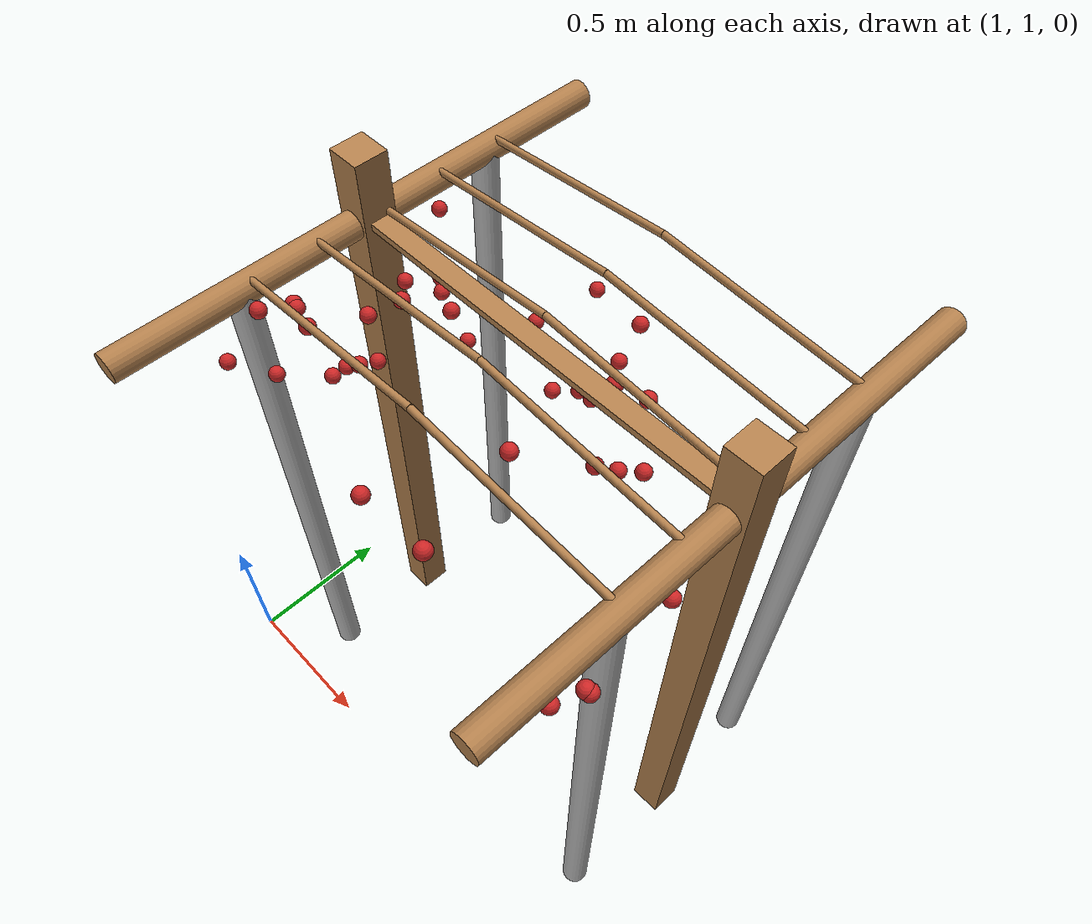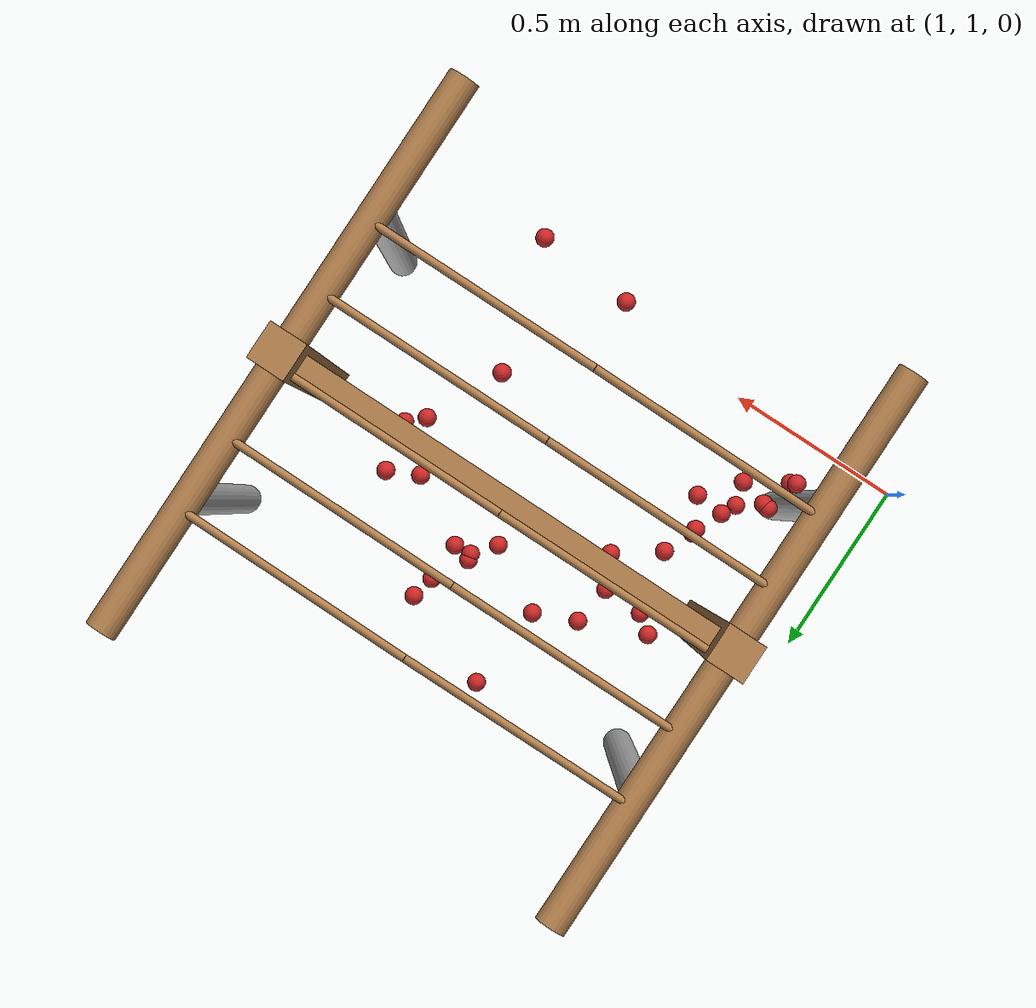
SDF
<sdf version="1.4">
 <model name="pergola">
  <include><name>post_9</name><pose>1.25 1.6 0 0 0 0</pose><uri>model://post</uri></include>
  <include><name>post_16</name><pose>2.5 1.6 0 0 0 0</pose><uri>model://post</uri></include>
  <link name="beam_9">
   <pose>1.875 1.6 1.81 0 0 0</pose>
   <collision name="collision"><geometry><box><size>1.25 0.06 0.02</size></box></geometry></collision>
   <visual name="visual">
    <geometry><box><size>1.25 0.06 0.02</size></box></geometry>
    <material><script><name>Gazebo/Wood</name></script></material>
   </visual>
   <inertial>
    <mass>5</mass>
    <inertia>
     <ixx>0.0016666666666666668</ixx>
     <ixy>0.0</ixy>
     <ixz>0.0</ixz>
     <iyy>0.6525416666666667</iyy>
     <iyz>0.0</iyz>
     <izz>0.6512083333333333</izz>
    </inertia>
   </inertial>
  </link>
  <include>
   <name>tree_7</name>
   <pose>1.25 1.2000000000000002 0 0 0 0</pose>
   <uri>model://tree_trunk</uri>
  </include>
  <include><name>tree_8</name><pose>1.25 2.0 0 0 0 0</pose><uri>model://tree_trunk</uri></include>
  <include>
   <name>tree_13</name>
   <pose>2.5 1.2000000000000002 0 0 0 0</pose>
   <uri>model://tree_trunk</uri>
  </include>
  <include><name>tree_14</name><pose>2.5 2.0 0 0 0 0</pose><uri>model://tree_trunk</uri></include>
  <link name="baseBranch_7">
   <pose>1.25 1.2000000000000002 1.8 1.5707963267948966 0 0</pose>
   <collision name="collision">
    <geometry><cylinder><radius>0.04</radius><length>0.74</length></cylinder></geometry>
   </collision>
   <visual name="visual">
    <geometry><cylinder><radius>0.04</radius><length>0.74</length></cylinder></geometry>
    <material><script><name>Gazebo/WoodFloor</name></script></material>
   </visual>
   <inertial>
    <mass>10</mass>
    <inertia>
     <ixx>0.4603333333333333</ixx>
     <ixy>0.0</ixy>
     <ixz>0.0</ixz>
     <iyy>0.4603333333333333</iyy>
     <iyz>0.0</iyz>
     <izz>0.008</izz>
    </inertia>
   </inertial>
  </link>
  <link name="baseBranch_8">
   <pose>1.25 2.0 1.8 1.5707963267948966 0 0</pose>
   <collision name="collision">
    <geometry><cylinder><radius>0.04</radius><length>0.74</length></cylinder></geometry>
   </collision>
   <visual name="visual">
    <geometry><cylinder><radius>0.04</radius><length>0.74</length></cylinder></geometry>
    <material><script><name>Gazebo/WoodFloor</name></script></material>
   </visual>
   <inertial>
    <mass>10</mass>
    <inertia>
     <ixx>0.4603333333333333</ixx>
     <ixy>0.0</ixy>
     <ixz>0.0</ixz>
     <iyy>0.4603333333333333</iyy>
     <iyz>0.0</iyz>
     <izz>0.008</izz>
    </inertia>
   </inertial>
  </link>
  <link name="baseBranch_13">
   <pose>2.5 1.2000000000000002 1.8 1.5707963267948966 0 0</pose>
   <collision name="collision">
    <geometry><cylinder><radius>0.04</radius><length>0.74</length></cylinder></geometry>
   </collision>
   <visual name="visual">
    <geometry><cylinder><radius>0.04</radius><length>0.74</length></cylinder></geometry>
    <material><script><name>Gazebo/WoodFloor</name></script></material>
   </visual>
   <inertial>
    <mass>10</mass>
    <inertia>
     <ixx>0.4603333333333333</ixx>
     <ixy>0.0</ixy>
     <ixz>0.0</ixz>
     <iyy>0.4603333333333333</iyy>
     <iyz>0.0</iyz>
     <izz>0.008</izz>
    </inertia>
   </inertial>
  </link>
  <link name="baseBranch_14">
   <pose>2.5 2.0 1.8 1.5707963267948966 0 0</pose>
   <collision name="collision">
    <geometry><cylinder><radius>0.04</radius><length>0.74</length></cylinder></geometry>
   </collision>
   <visual name="visual">
    <geometry><cylinder><radius>0.04</radius><length>0.74</length></cylinder></geometry>
    <material><script><name>Gazebo/WoodFloor</name></script></material>
   </visual>
   <inertial>
    <mass>10</mass>
    <inertia>
     <ixx>0.4603333333333333</ixx>
     <ixy>0.0</ixy>
     <ixz>0.0</ixz>
     <iyy>0.4603333333333333</iyy>
     <iyz>0.0</iyz>
     <izz>0.008</izz>
    </inertia>
   </inertial>
  </link>
  <link name="vine_60">
   <pose>1.5625 1.2300000000000002 1.85 0 1.4909663410826592 0</pose>
   <collision name="collision">
    <geometry><cylinder><radius>0.01</radius><length>0.6269968101992226</length></cylinder></geometry>
   </collision>
   <visual name="visual">
    <geometry><cylinder><radius>0.01</radius><length>0.6269968101992226</length></cylinder></geometry>
    <material><script><name>Gazebo/WoodFloor</name></script></material>
   </visual>
   <inertial>
    <mass>5</mass>
    <inertia>
     <ixx>0.1639270833333333</ixx>
     <ixy>0.0</ixy>
     <ixz>0.0</ixz>
     <iyy>0.1639270833333333</iyy>
     <iyz>0.0</iyz>
     <izz>0.00025</izz>
    </inertia>
   </inertial>
  </link>
  <link name="vine_61">
   <pose>2.1875 1.2300000000000002 1.85 0 -1.4909663410826592 0</pose>
   <collision name="collision">
    <geometry><cylinder><radius>0.01</radius><length>0.6269968101992226</length></cylinder></geometry>
   </collision>
   <visual name="visual">
    <geometry><cylinder><radius>0.01</radius><length>0.6269968101992226</length></cylinder></geometry>
    <material><script><name>Gazebo/WoodFloor</name></script></material>
   </visual>
   <inertial>
    <mass>5</mass>
    <inertia>
     <ixx>0.1639270833333333</ixx>
     <ixy>0.0</ixy>
     <ixz>0.0</ixz>
     <iyy>0.1639270833333333</iyy>
     <iyz>0.0</iyz>
     <izz>0.00025</izz>
    </inertia>
   </inertial>
  </link>
  <link name="vine_62">
   <pose>1.5625 1.4300000000000002 1.85 0 1.4909663410826592 0</pose>
   <collision name="collision">
    <geometry><cylinder><radius>0.01</radius><length>0.6269968101992226</length></cylinder></geometry>
   </collision>
   <visual name="visual">
    <geometry><cylinder><radius>0.01</radius><length>0.6269968101992226</length></cylinder></geometry>
    <material><script><name>Gazebo/WoodFloor</name></script></material>
   </visual>
   <inertial>
    <mass>5</mass>
    <inertia>
     <ixx>0.1639270833333333</ixx>
     <ixy>0.0</ixy>
     <ixz>0.0</ixz>
     <iyy>0.1639270833333333</iyy>
     <iyz>0.0</iyz>
     <izz>0.00025</izz>
    </inertia>
   </inertial>
  </link>
  <link name="vine_63">
   <pose>2.1875 1.4300000000000002 1.85 0 -1.4909663410826592 0</pose>
   <collision name="collision">
    <geometry><cylinder><radius>0.01</radius><length>0.6269968101992226</length></cylinder></geometry>
   </collision>
   <visual name="visual">
    <geometry><cylinder><radius>0.01</radius><length>0.6269968101992226</length></cylinder></geometry>
    <material><script><name>Gazebo/WoodFloor</name></script></material>
   </visual>
   <inertial>
    <mass>5</mass>
    <inertia>
     <ixx>0.1639270833333333</ixx>
     <ixy>0.0</ixy>
     <ixz>0.0</ixz>
     <iyy>0.1639270833333333</iyy>
     <iyz>0.0</iyz>
     <izz>0.00025</izz>
    </inertia>
   </inertial>
  </link>
  <link name="vine_64">
   <pose>1.5625 1.6300000000000001 1.85 0 1.4909663410826592 0</pose>
   <collision name="collision">
    <geometry><cylinder><radius>0.01</radius><length>0.6269968101992226</length></cylinder></geometry>
   </collision>
   <visual name="visual">
    <geometry><cylinder><radius>0.01</radius><length>0.6269968101992226</length></cylinder></geometry>
    <material><script><name>Gazebo/WoodFloor</name></script></material>
   </visual>
   <inertial>
    <mass>5</mass>
    <inertia>
     <ixx>0.1639270833333333</ixx>
     <ixy>0.0</ixy>
     <ixz>0.0</ixz>
     <iyy>0.1639270833333333</iyy>
     <iyz>0.0</iyz>
     <izz>0.00025</izz>
    </inertia>
   </inertial>
  </link>
  <link name="vine_65">
   <pose>2.1875 1.6300000000000001 1.85 0 -1.4909663410826592 0</pose>
   <collision name="collision">
    <geometry><cylinder><radius>0.01</radius><length>0.6269968101992226</length></cylinder></geometry>
   </collision>
   <visual name="visual">
    <geometry><cylinder><radius>0.01</radius><length>0.6269968101992226</length></cylinder></geometry>
    <material><script><name>Gazebo/WoodFloor</name></script></material>
   </visual>
   <inertial>
    <mass>5</mass>
    <inertia>
     <ixx>0.1639270833333333</ixx>
     <ixy>0.0</ixy>
     <ixz>0.0</ixz>
     <iyy>0.1639270833333333</iyy>
     <iyz>0.0</iyz>
     <izz>0.00025</izz>
    </inertia>
   </inertial>
  </link>
  <link name="vine_66">
   <pose>1.5625 1.83 1.85 0 1.4909663410826592 0</pose>
   <collision name="collision">
    <geometry><cylinder><radius>0.01</radius><length>0.6269968101992226</length></cylinder></geometry>
   </collision>
   <visual name="visual">
    <geometry><cylinder><radius>0.01</radius><length>0.6269968101992226</length></cylinder></geometry>
    <material><script><name>Gazebo/WoodFloor</name></script></material>
   </visual>
   <inertial>
    <mass>5</mass>
    <inertia>
     <ixx>0.1639270833333333</ixx>
     <ixy>0.0</ixy>
     <ixz>0.0</ixz>
     <iyy>0.1639270833333333</iyy>
     <iyz>0.0</iyz>
     <izz>0.00025</izz>
    </inertia>
   </inertial>
  </link>
  <link name="vine_67">
   <pose>2.1875 1.83 1.85 0 -1.4909663410826592 0</pose>
   <collision name="collision">
    <geometry><cylinder><radius>0.01</radius><length>0.6269968101992226</length></cylinder></geometry>
   </collision>
   <visual name="visual">
    <geometry><cylinder><radius>0.01</radius><length>0.6269968101992226</length></cylinder></geometry>
    <material><script><name>Gazebo/WoodFloor</name></script></material>
   </visual>
   <inertial>
    <mass>5</mass>
    <inertia>
     <ixx>0.1639270833333333</ixx>
     <ixy>0.0</ixy>
     <ixz>0.0</ixz>
     <iyy>0.1639270833333333</iyy>
     <iyz>0.0</iyz>
     <izz>0.00025</izz>
    </inertia>
   </inertial>
  </link>
  <link name="vine_68">
   <pose>1.5625 2.03 1.85 0 1.4909663410826592 0</pose>
   <collision name="collision">
    <geometry><cylinder><radius>0.01</radius><length>0.6269968101992226</length></cylinder></geometry>
   </collision>
   <visual name="visual">
    <geometry><cylinder><radius>0.01</radius><length>0.6269968101992226</length></cylinder></geometry>
    <material><script><name>Gazebo/WoodFloor</name></script></material>
   </visual>
   <inertial>
    <mass>5</mass>
    <inertia>
     <ixx>0.1639270833333333</ixx>
     <ixy>0.0</ixy>
     <ixz>0.0</ixz>
     <iyy>0.1639270833333333</iyy>
     <iyz>0.0</iyz>
     <izz>0.00025</izz>
    </inertia>
   </inertial>
  </link>
  <link name="vine_69">
   <pose>2.1875 2.03 1.85 0 -1.4909663410826592 0</pose>
   <collision name="collision">
    <geometry><cylinder><radius>0.01</radius><length>0.6269968101992226</length></cylinder></geometry>
   </collision>
   <visual name="visual">
    <geometry><cylinder><radius>0.01</radius><length>0.6269968101992226</length></cylinder></geometry>
    <material><script><name>Gazebo/WoodFloor</name></script></material>
   </visual>
   <inertial>
    <mass>5</mass>
    <inertia>
     <ixx>0.1639270833333333</ixx>
     <ixy>0.0</ixy>
     <ixz>0.0</ixz>
     <iyy>0.1639270833333333</iyy>
     <iyz>0.0</iyz>
     <izz>0.00025</izz>
    </inertia>
   </inertial>
  </link>
  <link name="fruit_4">
   <pose>2.4974649581701107 1.416926298565471 1.6243544361853863 0 0 0</pose>
   <collision name="fruit_collision_4"><geometry><sphere><radius>0.022</radius></sphere></geometry></collision>
   <visual name="visual">
    <geometry><sphere><radius>0.022</radius></sphere></geometry>
    <material><script><name>Gazebo/Red</name></script></material>
   </visual>
   <inertial>
    <mass>0.05</mass>
    <inertia>
     <ixx>9.679999999999999e-06</ixx>
     <ixy>0.0</ixy>
     <ixz>0.0</ixz>
     <iyy>9.679999999999999e-06</iyy>
     <iyz>0.0</iyz>
     <izz>9.679999999999999e-06</izz>
    </inertia>
   </inertial>
   <sensor name="fruit_contact_4" type="contact">
    <plugin name="contact_plugin_4" filename="libcontact_plugin.so"/>
    <contact><collision>fruit_collision_4</collision><topic>fruit_contact_topic_4</topic></contact>
   </sensor>
  </link>
  <link name="fruit_7">
   <pose>1.4714674962788106 1.4104890919146766 1.7336899253082798 0 0 0</pose>
   <collision name="fruit_collision_7"><geometry><sphere><radius>0.022</radius></sphere></geometry></collision>
   <visual name="visual">
    <geometry><sphere><radius>0.022</radius></sphere></geometry>
    <material><script><name>Gazebo/Red</name></script></material>
   </visual>
   <inertial>
    <mass>0.05</mass>
    <inertia>
     <ixx>9.679999999999999e-06</ixx>
     <ixy>0.0</ixy>
     <ixz>0.0</ixz>
     <iyy>9.679999999999999e-06</iyy>
     <iyz>0.0</iyz>
     <izz>9.679999999999999e-06</izz>
    </inertia>
   </inertial>
   <sensor name="fruit_contact_7" type="contact">
    <plugin name="contact_plugin_7" filename="libcontact_plugin.so"/>
    <contact><collision>fruit_collision_7</collision><topic>fruit_contact_topic_7</topic></contact>
   </sensor>
  </link>
  <link name="fruit_11">
   <pose>2.497191975398748 1.0480243119358033 1.6434020646975827 0 0 0</pose>
   <collision name="fruit_collision_11"><geometry><sphere><radius>0.022</radius></sphere></geometry></collision>
   <visual name="visual">
    <geometry><sphere><radius>0.022</radius></sphere></geometry>
    <material><script><name>Gazebo/Red</name></script></material>
   </visual>
   <inertial>
    <mass>0.05</mass>
    <inertia>
     <ixx>9.679999999999999e-06</ixx>
     <ixy>0.0</ixy>
     <ixz>0.0</ixz>
     <iyy>9.679999999999999e-06</iyy>
     <iyz>0.0</iyz>
     <izz>9.679999999999999e-06</izz>
    </inertia>
   </inertial>
   <sensor name="fruit_contact_11" type="contact">
    <plugin name="contact_plugin_11" filename="libcontact_plugin.so"/>
    <contact><collision>fruit_collision_11</collision><topic>fruit_contact_topic_11</topic></contact>
   </sensor>
  </link>
  <link name="fruit_20">
   <pose>1.4335254641981083 1.3416559034638003 1.5680953543327532 0 0 0</pose>
   <collision name="fruit_collision_20"><geometry><sphere><radius>0.022</radius></sphere></geometry></collision>
   <visual name="visual">
    <geometry><sphere><radius>0.022</radius></sphere></geometry>
    <material><script><name>Gazebo/Red</name></script></material>
   </visual>
   <inertial>
    <mass>0.05</mass>
    <inertia>
     <ixx>9.679999999999999e-06</ixx>
     <ixy>0.0</ixy>
     <ixz>0.0</ixz>
     <iyy>9.679999999999999e-06</iyy>
     <iyz>0.0</iyz>
     <izz>9.679999999999999e-06</izz>
    </inertia>
   </inertial>
   <sensor name="fruit_contact_20" type="contact">
    <plugin name="contact_plugin_20" filename="libcontact_plugin.so"/>
    <contact><collision>fruit_collision_20</collision><topic>fruit_contact_topic_20</topic></contact>
   </sensor>
  </link>
  <link name="fruit_46">
   <pose>2.5162425578249614 1.2814409593677318 1.8061376645472949 0 0 0</pose>
   <collision name="fruit_collision_46"><geometry><sphere><radius>0.022</radius></sphere></geometry></collision>
   <visual name="visual">
    <geometry><sphere><radius>0.022</radius></sphere></geometry>
    <material><script><name>Gazebo/Red</name></script></material>
   </visual>
   <inertial>
    <mass>0.05</mass>
    <inertia>
     <ixx>9.679999999999999e-06</ixx>
     <ixy>0.0</ixy>
     <ixz>0.0</ixz>
     <iyy>9.679999999999999e-06</iyy>
     <iyz>0.0</iyz>
     <izz>9.679999999999999e-06</izz>
    </inertia>
   </inertial>
   <sensor name="fruit_contact_46" type="contact">
    <plugin name="contact_plugin_46" filename="libcontact_plugin.so"/>
    <contact><collision>fruit_collision_46</collision><topic>fruit_contact_topic_46</topic></contact>
   </sensor>
  </link>
  <link name="fruit_56">
   <pose>1.233050830437045 1.1162341845115025 1.5959251298066055 0 0 0</pose>
   <collision name="fruit_collision_56"><geometry><sphere><radius>0.022</radius></sphere></geometry></collision>
   <visual name="visual">
    <geometry><sphere><radius>0.022</radius></sphere></geometry>
    <material><script><name>Gazebo/Red</name></script></material>
   </visual>
   <inertial>
    <mass>0.05</mass>
    <inertia>
     <ixx>9.679999999999999e-06</ixx>
     <ixy>0.0</ixy>
     <ixz>0.0</ixz>
     <iyy>9.679999999999999e-06</iyy>
     <iyz>0.0</iyz>
     <izz>9.679999999999999e-06</izz>
    </inertia>
   </inertial>
   <sensor name="fruit_contact_56" type="contact">
    <plugin name="contact_plugin_56" filename="libcontact_plugin.so"/>
    <contact><collision>fruit_collision_56</collision><topic>fruit_contact_topic_56</topic></contact>
   </sensor>
  </link>
  <link name="fruit_79">
   <pose>1.3721301547182632 1.6007269441543455 1.6570465678561084 0 0 0</pose>
   <collision name="fruit_collision_79"><geometry><sphere><radius>0.022</radius></sphere></geometry></collision>
   <visual name="visual">
    <geometry><sphere><radius>0.022</radius></sphere></geometry>
    <material><script><name>Gazebo/Red</name></script></material>
   </visual>
   <inertial>
    <mass>0.05</mass>
    <inertia>
     <ixx>9.679999999999999e-06</ixx>
     <ixy>0.0</ixy>
     <ixz>0.0</ixz>
     <iyy>9.679999999999999e-06</iyy>
     <iyz>0.0</iyz>
     <izz>9.679999999999999e-06</izz>
    </inertia>
   </inertial>
   <sensor name="fruit_contact_79" type="contact">
    <plugin name="contact_plugin_79" filename="libcontact_plugin.so"/>
    <contact><collision>fruit_collision_79</collision><topic>fruit_contact_topic_79</topic></contact>
   </sensor>
  </link>
  <link name="fruit_93">
   <pose>1.564057225663798 1.645297055382808 1.5447672023379178 0 0 0</pose>
   <collision name="fruit_collision_93"><geometry><sphere><radius>0.022</radius></sphere></geometry></collision>
   <visual name="visual">
    <geometry><sphere><radius>0.022</radius></sphere></geometry>
    <material><script><name>Gazebo/Red</name></script></material>
   </visual>
   <inertial>
    <mass>0.05</mass>
    <inertia>
     <ixx>9.679999999999999e-06</ixx>
     <ixy>0.0</ixy>
     <ixz>0.0</ixz>
     <iyy>9.679999999999999e-06</iyy>
     <iyz>0.0</iyz>
     <izz>9.679999999999999e-06</izz>
    </inertia>
   </inertial>
   <sensor name="fruit_contact_93" type="contact">
    <plugin name="contact_plugin_93" filename="libcontact_plugin.so"/>
    <contact><collision>fruit_collision_93</collision><topic>fruit_contact_topic_93</topic></contact>
   </sensor>
  </link>
  <link name="fruit_100">
   <pose>1.504918371474508 1.4935863503176967 1.752804850314558 0 0 0</pose>
   <collision name="fruit_collision_100"><geometry><sphere><radius>0.022</radius></sphere></geometry></collision>
   <visual name="visual">
    <geometry><sphere><radius>0.022</radius></sphere></geometry>
    <material><script><name>Gazebo/Red</name></script></material>
   </visual>
   <inertial>
    <mass>0.05</mass>
    <inertia>
     <ixx>9.679999999999999e-06</ixx>
     <ixy>0.0</ixy>
     <ixz>0.0</ixz>
     <iyy>9.679999999999999e-06</iyy>
     <iyz>0.0</iyz>
     <izz>9.679999999999999e-06</izz>
    </inertia>
   </inertial>
   <sensor name="fruit_contact_100" type="contact">
    <plugin name="contact_plugin_100" filename="libcontact_plugin.so"/>
    <contact><collision>fruit_collision_100</collision><topic>fruit_contact_topic_100</topic></contact>
   </sensor>
  </link>
  <link name="fruit_109">
   <pose>1.5801105497620598 1.7437919428115343 1.6137090330570005 0 0 0</pose>
   <collision name="fruit_collision_109"><geometry><sphere><radius>0.022</radius></sphere></geometry></collision>
   <visual name="visual">
    <geometry><sphere><radius>0.022</radius></sphere></geometry>
    <material><script><name>Gazebo/Red</name></script></material>
   </visual>
   <inertial>
    <mass>0.05</mass>
    <inertia>
     <ixx>9.679999999999999e-06</ixx>
     <ixy>0.0</ixy>
     <ixz>0.0</ixz>
     <iyy>9.679999999999999e-06</iyy>
     <iyz>0.0</iyz>
     <izz>9.679999999999999e-06</izz>
    </inertia>
   </inertial>
   <sensor name="fruit_contact_109" type="contact">
    <plugin name="contact_plugin_109" filename="libcontact_plugin.so"/>
    <contact><collision>fruit_collision_109</collision><topic>fruit_contact_topic_109</topic></contact>
   </sensor>
  </link>
  <link name="fruit_112">
   <pose>2.050732287001831 1.3540992172264403 1.7782882786587366 0 0 0</pose>
   <collision name="fruit_collision_112"><geometry><sphere><radius>0.022</radius></sphere></geometry></collision>
   <visual name="visual">
    <geometry><sphere><radius>0.022</radius></sphere></geometry>
    <material><script><name>Gazebo/Red</name></script></material>
   </visual>
   <inertial>
    <mass>0.05</mass>
    <inertia>
     <ixx>9.679999999999999e-06</ixx>
     <ixy>0.0</ixy>
     <ixz>0.0</ixz>
     <iyy>9.679999999999999e-06</iyy>
     <iyz>0.0</iyz>
     <izz>9.679999999999999e-06</izz>
    </inertia>
   </inertial>
   <sensor name="fruit_contact_112" type="contact">
    <plugin name="contact_plugin_112" filename="libcontact_plugin.so"/>
    <contact><collision>fruit_collision_112</collision><topic>fruit_contact_topic_112</topic></contact>
   </sensor>
  </link>
  <link name="fruit_118">
   <pose>1.8373005612399333 1.69799322915665 1.5300744676084397 0 0 0</pose>
   <collision name="fruit_collision_118"><geometry><sphere><radius>0.022</radius></sphere></geometry></collision>
   <visual name="visual">
    <geometry><sphere><radius>0.022</radius></sphere></geometry>
    <material><script><name>Gazebo/Red</name></script></material>
   </visual>
   <inertial>
    <mass>0.05</mass>
    <inertia>
     <ixx>9.679999999999999e-06</ixx>
     <ixy>0.0</ixy>
     <ixz>0.0</ixz>
     <iyy>9.679999999999999e-06</iyy>
     <iyz>0.0</iyz>
     <izz>9.679999999999999e-06</izz>
    </inertia>
   </inertial>
   <sensor name="fruit_contact_118" type="contact">
    <plugin name="contact_plugin_118" filename="libcontact_plugin.so"/>
    <contact><collision>fruit_collision_118</collision><topic>fruit_contact_topic_118</topic></contact>
   </sensor>
  </link>
  <link name="fruit_153">
   <pose>1.7012830373140748 1.998222551772224 1.5941014313136144 0 0 0</pose>
   <collision name="fruit_collision_153"><geometry><sphere><radius>0.022</radius></sphere></geometry></collision>
   <visual name="visual">
    <geometry><sphere><radius>0.022</radius></sphere></geometry>
    <material><script><name>Gazebo/Red</name></script></material>
   </visual>
   <inertial>
    <mass>0.05</mass>
    <inertia>
     <ixx>9.679999999999999e-06</ixx>
     <ixy>0.0</ixy>
     <ixz>0.0</ixz>
     <iyy>9.679999999999999e-06</iyy>
     <iyz>0.0</iyz>
     <izz>9.679999999999999e-06</izz>
    </inertia>
   </inertial>
   <sensor name="fruit_contact_153" type="contact">
    <plugin name="contact_plugin_153" filename="libcontact_plugin.so"/>
    <contact><collision>fruit_collision_153</collision><topic>fruit_contact_topic_153</topic></contact>
   </sensor>
  </link>
  <link name="fruit_180">
   <pose>1.4146729496621409 1.3057748600165238 1.54387506667744 0 0 0</pose>
   <collision name="fruit_collision_180"><geometry><sphere><radius>0.022</radius></sphere></geometry></collision>
   <visual name="visual">
    <geometry><sphere><radius>0.022</radius></sphere></geometry>
    <material><script><name>Gazebo/Red</name></script></material>
   </visual>
   <inertial>
    <mass>0.05</mass>
    <inertia>
     <ixx>9.679999999999999e-06</ixx>
     <ixy>0.0</ixy>
     <ixz>0.0</ixz>
     <iyy>9.679999999999999e-06</iyy>
     <iyz>0.0</iyz>
     <izz>9.679999999999999e-06</izz>
    </inertia>
   </inertial>
   <sensor name="fruit_contact_180" type="contact">
    <plugin name="contact_plugin_180" filename="libcontact_plugin.so"/>
    <contact><collision>fruit_collision_180</collision><topic>fruit_contact_topic_180</topic></contact>
   </sensor>
  </link>
  <link name="fruit_185">
   <pose>1.3363437040082131 1.1940315282324203 1.8000755099559893 0 0 0</pose>
   <collision name="fruit_collision_185"><geometry><sphere><radius>0.022</radius></sphere></geometry></collision>
   <visual name="visual">
    <geometry><sphere><radius>0.022</radius></sphere></geometry>
    <material><script><name>Gazebo/Red</name></script></material>
   </visual>
   <inertial>
    <mass>0.05</mass>
    <inertia>
     <ixx>9.679999999999999e-06</ixx>
     <ixy>0.0</ixy>
     <ixz>0.0</ixz>
     <iyy>9.679999999999999e-06</iyy>
     <iyz>0.0</iyz>
     <izz>9.679999999999999e-06</izz>
    </inertia>
   </inertial>
   <sensor name="fruit_contact_185" type="contact">
    <plugin name="contact_plugin_185" filename="libcontact_plugin.so"/>
    <contact><collision>fruit_collision_185</collision><topic>fruit_contact_topic_185</topic></contact>
   </sensor>
  </link>
  <link name="fruit_211">
   <pose>1.9377219923954818 1.9040742232008279 1.701293313635635 0 0 0</pose>
   <collision name="fruit_collision_211"><geometry><sphere><radius>0.022</radius></sphere></geometry></collision>
   <visual name="visual">
    <geometry><sphere><radius>0.022</radius></sphere></geometry>
    <material><script><name>Gazebo/Red</name></script></material>
   </visual>
   <inertial>
    <mass>0.05</mass>
    <inertia>
     <ixx>9.679999999999999e-06</ixx>
     <ixy>0.0</ixy>
     <ixz>0.0</ixz>
     <iyy>9.679999999999999e-06</iyy>
     <iyz>0.0</iyz>
     <izz>9.679999999999999e-06</izz>
    </inertia>
   </inertial>
   <sensor name="fruit_contact_211" type="contact">
    <plugin name="contact_plugin_211" filename="libcontact_plugin.so"/>
    <contact><collision>fruit_collision_211</collision><topic>fruit_contact_topic_211</topic></contact>
   </sensor>
  </link>
  <link name="fruit_237">
   <pose>1.8999079477434566 1.0555907753138376 1.748501429337426 0 0 0</pose>
   <collision name="fruit_collision_237"><geometry><sphere><radius>0.022</radius></sphere></geometry></collision>
   <visual name="visual">
    <geometry><sphere><radius>0.022</radius></sphere></geometry>
    <material><script><name>Gazebo/Red</name></script></material>
   </visual>
   <inertial>
    <mass>0.05</mass>
    <inertia>
     <ixx>9.679999999999999e-06</ixx>
     <ixy>0.0</ixy>
     <ixz>0.0</ixz>
     <iyy>9.679999999999999e-06</iyy>
     <iyz>0.0</iyz>
     <izz>9.679999999999999e-06</izz>
    </inertia>
   </inertial>
   <sensor name="fruit_contact_237" type="contact">
    <plugin name="contact_plugin_237" filename="libcontact_plugin.so"/>
    <contact><collision>fruit_collision_237</collision><topic>fruit_contact_topic_237</topic></contact>
   </sensor>
  </link>
  <link name="fruit_251">
   <pose>1.9257376339713124 1.850587432497142 1.5960674512006845 0 0 0</pose>
   <collision name="fruit_collision_251"><geometry><sphere><radius>0.022</radius></sphere></geometry></collision>
   <visual name="visual">
    <geometry><sphere><radius>0.022</radius></sphere></geometry>
    <material><script><name>Gazebo/Red</name></script></material>
   </visual>
   <inertial>
    <mass>0.05</mass>
    <inertia>
     <ixx>9.679999999999999e-06</ixx>
     <ixy>0.0</ixy>
     <ixz>0.0</ixz>
     <iyy>9.679999999999999e-06</iyy>
     <iyz>0.0</iyz>
     <izz>9.679999999999999e-06</izz>
    </inertia>
   </inertial>
   <sensor name="fruit_contact_251" type="contact">
    <plugin name="contact_plugin_251" filename="libcontact_plugin.so"/>
    <contact><collision>fruit_collision_251</collision><topic>fruit_contact_topic_251</topic></contact>
   </sensor>
  </link>
  <link name="fruit_260">
   <pose>2.143858862698565 1.5369819726405887 1.6478437069455543 0 0 0</pose>
   <collision name="fruit_collision_260"><geometry><sphere><radius>0.022</radius></sphere></geometry></collision>
   <visual name="visual">
    <geometry><sphere><radius>0.022</radius></sphere></geometry>
    <material><script><name>Gazebo/Red</name></script></material>
   </visual>
   <inertial>
    <mass>0.05</mass>
    <inertia>
     <ixx>9.679999999999999e-06</ixx>
     <ixy>0.0</ixy>
     <ixz>0.0</ixz>
     <iyy>9.679999999999999e-06</iyy>
     <iyz>0.0</iyz>
     <izz>9.679999999999999e-06</izz>
    </inertia>
   </inertial>
   <sensor name="fruit_contact_260" type="contact">
    <plugin name="contact_plugin_260" filename="libcontact_plugin.so"/>
    <contact><collision>fruit_collision_260</collision><topic>fruit_contact_topic_260</topic></contact>
   </sensor>
  </link>
  <link name="fruit_281">
   <pose>1.507652989098089 1.3379795107610701 1.6373962969757183 0 0 0</pose>
   <collision name="fruit_collision_281"><geometry><sphere><radius>0.022</radius></sphere></geometry></collision>
   <visual name="visual">
    <geometry><sphere><radius>0.022</radius></sphere></geometry>
    <material><script><name>Gazebo/Red</name></script></material>
   </visual>
   <inertial>
    <mass>0.05</mass>
    <inertia>
     <ixx>9.679999999999999e-06</ixx>
     <ixy>0.0</ixy>
     <ixz>0.0</ixz>
     <iyy>9.679999999999999e-06</iyy>
     <iyz>0.0</iyz>
     <izz>9.679999999999999e-06</izz>
    </inertia>
   </inertial>
   <sensor name="fruit_contact_281" type="contact">
    <plugin name="contact_plugin_281" filename="libcontact_plugin.so"/>
    <contact><collision>fruit_collision_281</collision><topic>fruit_contact_topic_281</topic></contact>
   </sensor>
  </link>
  <link name="fruit_330">
   <pose>2.0781529475224323 1.6577163212706405 1.7841285067911201 0 0 0</pose>
   <collision name="fruit_collision_330"><geometry><sphere><radius>0.022</radius></sphere></geometry></collision>
   <visual name="visual">
    <geometry><sphere><radius>0.022</radius></sphere></geometry>
    <material><script><name>Gazebo/Red</name></script></material>
   </visual>
   <inertial>
    <mass>0.05</mass>
    <inertia>
     <ixx>9.679999999999999e-06</ixx>
     <ixy>0.0</ixy>
     <ixz>0.0</ixz>
     <iyy>9.679999999999999e-06</iyy>
     <iyz>0.0</iyz>
     <izz>9.679999999999999e-06</izz>
    </inertia>
   </inertial>
   <sensor name="fruit_contact_330" type="contact">
    <plugin name="contact_plugin_330" filename="libcontact_plugin.so"/>
    <contact><collision>fruit_collision_330</collision><topic>fruit_contact_topic_330</topic></contact>
   </sensor>
  </link>
  <link name="fruit_347">
   <pose>1.6069156666298916 1.5670118251650185 1.739317499315831 0 0 0</pose>
   <collision name="fruit_collision_347"><geometry><sphere><radius>0.022</radius></sphere></geometry></collision>
   <visual name="visual">
    <geometry><sphere><radius>0.022</radius></sphere></geometry>
    <material><script><name>Gazebo/Red</name></script></material>
   </visual>
   <inertial>
    <mass>0.05</mass>
    <inertia>
     <ixx>9.679999999999999e-06</ixx>
     <ixy>0.0</ixy>
     <ixz>0.0</ixz>
     <iyy>9.679999999999999e-06</iyy>
     <iyz>0.0</iyz>
     <izz>9.679999999999999e-06</izz>
    </inertia>
   </inertial>
   <sensor name="fruit_contact_347" type="contact">
    <plugin name="contact_plugin_347" filename="libcontact_plugin.so"/>
    <contact><collision>fruit_collision_347</collision><topic>fruit_contact_topic_347</topic></contact>
   </sensor>
  </link>
  <link name="fruit_355">
   <pose>2.183290777297163 1.5743446107093944 1.6330320471265114 0 0 0</pose>
   <collision name="fruit_collision_355"><geometry><sphere><radius>0.022</radius></sphere></geometry></collision>
   <visual name="visual">
    <geometry><sphere><radius>0.022</radius></sphere></geometry>
    <material><script><name>Gazebo/Red</name></script></material>
   </visual>
   <inertial>
    <mass>0.05</mass>
    <inertia>
     <ixx>9.679999999999999e-06</ixx>
     <ixy>0.0</ixy>
     <ixz>0.0</ixz>
     <iyy>9.679999999999999e-06</iyy>
     <iyz>0.0</iyz>
     <izz>9.679999999999999e-06</izz>
    </inertia>
   </inertial>
   <sensor name="fruit_contact_355" type="contact">
    <plugin name="contact_plugin_355" filename="libcontact_plugin.so"/>
    <contact><collision>fruit_collision_355</collision><topic>fruit_contact_topic_355</topic></contact>
   </sensor>
  </link>
  <link name="fruit_367">
   <pose>1.3599251126977632 1.2779100076496563 1.7819745190267766 0 0 0</pose>
   <collision name="fruit_collision_367"><geometry><sphere><radius>0.022</radius></sphere></geometry></collision>
   <visual name="visual">
    <geometry><sphere><radius>0.022</radius></sphere></geometry>
    <material><script><name>Gazebo/Red</name></script></material>
   </visual>
   <inertial>
    <mass>0.05</mass>
    <inertia>
     <ixx>9.679999999999999e-06</ixx>
     <ixy>0.0</ixy>
     <ixz>0.0</ixz>
     <iyy>9.679999999999999e-06</iyy>
     <iyz>0.0</iyz>
     <izz>9.679999999999999e-06</izz>
    </inertia>
   </inertial>
   <sensor name="fruit_contact_367" type="contact">
    <plugin name="contact_plugin_367" filename="libcontact_plugin.so"/>
    <contact><collision>fruit_collision_367</collision><topic>fruit_contact_topic_367</topic></contact>
   </sensor>
  </link>
  <link name="fruit_399">
   <pose>1.464799745796147 1.4185147177326256 1.5561972561209605 0 0 0</pose>
   <collision name="fruit_collision_399"><geometry><sphere><radius>0.022</radius></sphere></geometry></collision>
   <visual name="visual">
    <geometry><sphere><radius>0.022</radius></sphere></geometry>
    <material><script><name>Gazebo/Red</name></script></material>
   </visual>
   <inertial>
    <mass>0.05</mass>
    <inertia>
     <ixx>9.679999999999999e-06</ixx>
     <ixy>0.0</ixy>
     <ixz>0.0</ixz>
     <iyy>9.679999999999999e-06</iyy>
     <iyz>0.0</iyz>
     <izz>9.679999999999999e-06</izz>
    </inertia>
   </inertial>
   <sensor name="fruit_contact_399" type="contact">
    <plugin name="contact_plugin_399" filename="libcontact_plugin.so"/>
    <contact><collision>fruit_collision_399</collision><topic>fruit_contact_topic_399</topic></contact>
   </sensor>
  </link>
  <link name="fruit_411">
   <pose>1.373881783452398 1.274906069448602 1.7806720836741345 0 0 0</pose>
   <collision name="fruit_collision_411"><geometry><sphere><radius>0.022</radius></sphere></geometry></collision>
   <visual name="visual">
    <geometry><sphere><radius>0.022</radius></sphere></geometry>
    <material><script><name>Gazebo/Red</name></script></material>
   </visual>
   <inertial>
    <mass>0.05</mass>
    <inertia>
     <ixx>9.679999999999999e-06</ixx>
     <ixy>0.0</ixy>
     <ixz>0.0</ixz>
     <iyy>9.679999999999999e-06</iyy>
     <iyz>0.0</iyz>
     <izz>9.679999999999999e-06</izz>
    </inertia>
   </inertial>
   <sensor name="fruit_contact_411" type="contact">
    <plugin name="contact_plugin_411" filename="libcontact_plugin.so"/>
    <contact><collision>fruit_collision_411</collision><topic>fruit_contact_topic_411</topic></contact>
   </sensor>
  </link>
  <link name="fruit_444">
   <pose>1.4685133881026948 1.6459728529345146 1.6551080095077437 0 0 0</pose>
   <collision name="fruit_collision_444"><geometry><sphere><radius>0.022</radius></sphere></geometry></collision>
   <visual name="visual">
    <geometry><sphere><radius>0.022</radius></sphere></geometry>
    <material><script><name>Gazebo/Red</name></script></material>
   </visual>
   <inertial>
    <mass>0.05</mass>
    <inertia>
     <ixx>9.679999999999999e-06</ixx>
     <ixy>0.0</ixy>
     <ixz>0.0</ixz>
     <iyy>9.679999999999999e-06</iyy>
     <iyz>0.0</iyz>
     <izz>9.679999999999999e-06</izz>
    </inertia>
   </inertial>
   <sensor name="fruit_contact_444" type="contact">
    <plugin name="contact_plugin_444" filename="libcontact_plugin.so"/>
    <contact><collision>fruit_collision_444</collision><topic>fruit_contact_topic_444</topic></contact>
   </sensor>
  </link>
  <link name="fruit_450">
   <pose>1.6809100549346534 1.7869684460888937 1.6046894320446858 0 0 0</pose>
   <collision name="fruit_collision_450"><geometry><sphere><radius>0.022</radius></sphere></geometry></collision>
   <visual name="visual">
    <geometry><sphere><radius>0.022</radius></sphere></geometry>
    <material><script><name>Gazebo/Red</name></script></material>
   </visual>
   <inertial>
    <mass>0.05</mass>
    <inertia>
     <ixx>9.679999999999999e-06</ixx>
     <ixy>0.0</ixy>
     <ixz>0.0</ixz>
     <iyy>9.679999999999999e-06</iyy>
     <iyz>0.0</iyz>
     <izz>9.679999999999999e-06</izz>
    </inertia>
   </inertial>
   <sensor name="fruit_contact_450" type="contact">
    <plugin name="contact_plugin_450" filename="libcontact_plugin.so"/>
    <contact><collision>fruit_collision_450</collision><topic>fruit_contact_topic_450</topic></contact>
   </sensor>
  </link>
  <link name="fruit_479">
   <pose>1.9240262597117614 1.7555291861681344 1.5217424031672766 0 0 0</pose>
   <collision name="fruit_collision_479"><geometry><sphere><radius>0.022</radius></sphere></geometry></collision>
   <visual name="visual">
    <geometry><sphere><radius>0.022</radius></sphere></geometry>
    <material><script><name>Gazebo/Red</name></script></material>
   </visual>
   <inertial>
    <mass>0.05</mass>
    <inertia>
     <ixx>9.679999999999999e-06</ixx>
     <ixy>0.0</ixy>
     <ixz>0.0</ixz>
     <iyy>9.679999999999999e-06</iyy>
     <iyz>0.0</iyz>
     <izz>9.679999999999999e-06</izz>
    </inertia>
   </inertial>
   <sensor name="fruit_contact_479" type="contact">
    <plugin name="contact_plugin_479" filename="libcontact_plugin.so"/>
    <contact><collision>fruit_collision_479</collision><topic>fruit_contact_topic_479</topic></contact>
   </sensor>
  </link>
  <link name="fruit_516">
   <pose>1.250764047057434 2.044845034276944 1.8011656371266818 0 0 0</pose>
   <collision name="fruit_collision_516"><geometry><sphere><radius>0.022</radius></sphere></geometry></collision>
   <visual name="visual">
    <geometry><sphere><radius>0.022</radius></sphere></geometry>
    <material><script><name>Gazebo/Red</name></script></material>
   </visual>
   <inertial>
    <mass>0.05</mass>
    <inertia>
     <ixx>9.679999999999999e-06</ixx>
     <ixy>0.0</ixy>
     <ixz>0.0</ixz>
     <iyy>9.679999999999999e-06</iyy>
     <iyz>0.0</iyz>
     <izz>9.679999999999999e-06</izz>
    </inertia>
   </inertial>
   <sensor name="fruit_contact_516" type="contact">
    <plugin name="contact_plugin_516" filename="libcontact_plugin.so"/>
    <contact><collision>fruit_collision_516</collision><topic>fruit_contact_topic_516</topic></contact>
   </sensor>
  </link>
  <link name="fruit_537">
   <pose>2.152345791384997 1.6933874333689372 1.765741756008397 0 0 0</pose>
   <collision name="fruit_collision_537"><geometry><sphere><radius>0.022</radius></sphere></geometry></collision>
   <visual name="visual">
    <geometry><sphere><radius>0.022</radius></sphere></geometry>
    <material><script><name>Gazebo/Red</name></script></material>
   </visual>
   <inertial>
    <mass>0.05</mass>
    <inertia>
     <ixx>9.679999999999999e-06</ixx>
     <ixy>0.0</ixy>
     <ixz>0.0</ixz>
     <iyy>9.679999999999999e-06</iyy>
     <iyz>0.0</iyz>
     <izz>9.679999999999999e-06</izz>
    </inertia>
   </inertial>
   <sensor name="fruit_contact_537" type="contact">
    <plugin name="contact_plugin_537" filename="libcontact_plugin.so"/>
    <contact><collision>fruit_collision_537</collision><topic>fruit_contact_topic_537</topic></contact>
   </sensor>
  </link>
  <link name="fruit_615">
   <pose>1.2612448862182912 1.8198180374168877 1.705329457199577 0 0 0</pose>
   <collision name="fruit_collision_615"><geometry><sphere><radius>0.022</radius></sphere></geometry></collision>
   <visual name="visual">
    <geometry><sphere><radius>0.022</radius></sphere></geometry>
    <material><script><name>Gazebo/Red</name></script></material>
   </visual>
   <inertial>
    <mass>0.05</mass>
    <inertia>
     <ixx>9.679999999999999e-06</ixx>
     <ixy>0.0</ixy>
     <ixz>0.0</ixz>
     <iyy>9.679999999999999e-06</iyy>
     <iyz>0.0</iyz>
     <izz>9.679999999999999e-06</izz>
    </inertia>
   </inertial>
   <sensor name="fruit_contact_615" type="contact">
    <plugin name="contact_plugin_615" filename="libcontact_plugin.so"/>
    <contact><collision>fruit_collision_615</collision><topic>fruit_contact_topic_615</topic></contact>
   </sensor>
  </link>
  <link name="fruit_667">
   <pose>1.8775609602079693 1.7671214506942197 1.5222826179733235 0 0 0</pose>
   <collision name="fruit_collision_667"><geometry><sphere><radius>0.022</radius></sphere></geometry></collision>
   <visual name="visual">
    <geometry><sphere><radius>0.022</radius></sphere></geometry>
    <material><script><name>Gazebo/Red</name></script></material>
   </visual>
   <inertial>
    <mass>0.05</mass>
    <inertia>
     <ixx>9.679999999999999e-06</ixx>
     <ixy>0.0</ixy>
     <ixz>0.0</ixz>
     <iyy>9.679999999999999e-06</iyy>
     <iyz>0.0</iyz>
     <izz>9.679999999999999e-06</izz>
    </inertia>
   </inertial>
   <sensor name="fruit_contact_667" type="contact">
    <plugin name="contact_plugin_667" filename="libcontact_plugin.so"/>
    <contact><collision>fruit_collision_667</collision><topic>fruit_contact_topic_667</topic></contact>
   </sensor>
  </link>
  <link name="fruit_671">
   <pose>1.4411449581396385 1.2577923971492433 1.7786679571398345 0 0 0</pose>
   <collision name="fruit_collision_671"><geometry><sphere><radius>0.022</radius></sphere></geometry></collision>
   <visual name="visual">
    <geometry><sphere><radius>0.022</radius></sphere></geometry>
    <material><script><name>Gazebo/Red</name></script></material>
   </visual>
   <inertial>
    <mass>0.05</mass>
    <inertia>
     <ixx>9.679999999999999e-06</ixx>
     <ixy>0.0</ixy>
     <ixz>0.0</ixz>
     <iyy>9.679999999999999e-06</iyy>
     <iyz>0.0</iyz>
     <izz>9.679999999999999e-06</izz>
    </inertia>
   </inertial>
   <sensor name="fruit_contact_671" type="contact">
    <plugin name="contact_plugin_671" filename="libcontact_plugin.so"/>
    <contact><collision>fruit_collision_671</collision><topic>fruit_contact_topic_671</topic></contact>
   </sensor>
  </link>
  <link name="fruit_676">
   <pose>1.336775536729266 1.191213056804151 1.5760564785399986 0 0 0</pose>
   <collision name="fruit_collision_676"><geometry><sphere><radius>0.022</radius></sphere></geometry></collision>
   <visual name="visual">
    <geometry><sphere><radius>0.022</radius></sphere></geometry>
    <material><script><name>Gazebo/Red</name></script></material>
   </visual>
   <inertial>
    <mass>0.05</mass>
    <inertia>
     <ixx>9.679999999999999e-06</ixx>
     <ixy>0.0</ixy>
     <ixz>0.0</ixz>
     <iyy>9.679999999999999e-06</iyy>
     <iyz>0.0</iyz>
     <izz>9.679999999999999e-06</izz>
    </inertia>
   </inertial>
   <sensor name="fruit_contact_676" type="contact">
    <plugin name="contact_plugin_676" filename="libcontact_plugin.so"/>
    <contact><collision>fruit_collision_676</collision><topic>fruit_contact_topic_676</topic></contact>
   </sensor>
  </link>
  <link name="fruit_707">
   <pose>2.529908659796013 1.1323298976641716 1.6263564743273207 0 0 0</pose>
   <collision name="fruit_collision_707"><geometry><sphere><radius>0.022</radius></sphere></geometry></collision>
   <visual name="visual">
    <geometry><sphere><radius>0.022</radius></sphere></geometry>
    <material><script><name>Gazebo/Red</name></script></material>
   </visual>
   <inertial>
    <mass>0.05</mass>
    <inertia>
     <ixx>9.679999999999999e-06</ixx>
     <ixy>0.0</ixy>
     <ixz>0.0</ixz>
     <iyy>9.679999999999999e-06</iyy>
     <iyz>0.0</iyz>
     <izz>9.679999999999999e-06</izz>
    </inertia>
   </inertial>
   <sensor name="fruit_contact_707" type="contact">
    <plugin name="contact_plugin_707" filename="libcontact_plugin.so"/>
    <contact><collision>fruit_collision_707</collision><topic>fruit_contact_topic_707</topic></contact>
   </sensor>
  </link>
  <link name="fruit_720">
   <pose>2.2247612971573574 1.6191318697034929 1.6266803506118332 0 0 0</pose>
   <collision name="fruit_collision_720"><geometry><sphere><radius>0.022</radius></sphere></geometry></collision>
   <visual name="visual">
    <geometry><sphere><radius>0.022</radius></sphere></geometry>
    <material><script><name>Gazebo/Red</name></script></material>
   </visual>
   <inertial>
    <mass>0.05</mass>
    <inertia>
     <ixx>9.679999999999999e-06</ixx>
     <ixy>0.0</ixy>
     <ixz>0.0</ixz>
     <iyy>9.679999999999999e-06</iyy>
     <iyz>0.0</iyz>
     <izz>9.679999999999999e-06</izz>
    </inertia>
   </inertial>
   <sensor name="fruit_contact_720" type="contact">
    <plugin name="contact_plugin_720" filename="libcontact_plugin.so"/>
    <contact><collision>fruit_collision_720</collision><topic>fruit_contact_topic_720</topic></contact>
   </sensor>
  </link>
  <link name="fruit_735">
   <pose>2.138869180285045 1.039320583325816 1.8184892839413669 0 0 0</pose>
   <collision name="fruit_collision_735"><geometry><sphere><radius>0.022</radius></sphere></geometry></collision>
   <visual name="visual">
    <geometry><sphere><radius>0.022</radius></sphere></geometry>
    <material><script><name>Gazebo/Red</name></script></material>
   </visual>
   <inertial>
    <mass>0.05</mass>
    <inertia>
     <ixx>9.679999999999999e-06</ixx>
     <ixy>0.0</ixy>
     <ixz>0.0</ixz>
     <iyy>9.679999999999999e-06</iyy>
     <iyz>0.0</iyz>
     <izz>9.679999999999999e-06</izz>
    </inertia>
   </inertial>
   <sensor name="fruit_contact_735" type="contact">
    <plugin name="contact_plugin_735" filename="libcontact_plugin.so"/>
    <contact><collision>fruit_collision_735</collision><topic>fruit_contact_topic_735</topic></contact>
   </sensor>
  </link>
  <link name="fruit_759">
   <pose>1.881149641916921 1.7526489050721155 1.5224071136821067 0 0 0</pose>
   <collision name="fruit_collision_759"><geometry><sphere><radius>0.022</radius></sphere></geometry></collision>
   <visual name="visual">
    <geometry><sphere><radius>0.022</radius></sphere></geometry>
    <material><script><name>Gazebo/Red</name></script></material>
   </visual>
   <inertial>
    <mass>0.05</mass>
    <inertia>
     <ixx>9.679999999999999e-06</ixx>
     <ixy>0.0</ixy>
     <ixz>0.0</ixz>
     <iyy>9.679999999999999e-06</iyy>
     <iyz>0.0</iyz>
     <izz>9.679999999999999e-06</izz>
    </inertia>
   </inertial>
   <sensor name="fruit_contact_759" type="contact">
    <plugin name="contact_plugin_759" filename="libcontact_plugin.so"/>
    <contact><collision>fruit_collision_759</collision><topic>fruit_contact_topic_759</topic></contact>
   </sensor>
  </link>
  <link name="fruit_771">
   <pose>1.4255874313651073 1.6789907748238366 1.6546980435140515 0 0 0</pose>
   <collision name="fruit_collision_771"><geometry><sphere><radius>0.022</radius></sphere></geometry></collision>
   <visual name="visual">
    <geometry><sphere><radius>0.022</radius></sphere></geometry>
    <material><script><name>Gazebo/Red</name></script></material>
   </visual>
   <inertial>
    <mass>0.05</mass>
    <inertia>
     <ixx>9.679999999999999e-06</ixx>
     <ixy>0.0</ixy>
     <ixz>0.0</ixz>
     <iyy>9.679999999999999e-06</iyy>
     <iyz>0.0</iyz>
     <izz>9.679999999999999e-06</izz>
    </inertia>
   </inertial>
   <sensor name="fruit_contact_771" type="contact">
    <plugin name="contact_plugin_771" filename="libcontact_plugin.so"/>
    <contact><collision>fruit_collision_771</collision><topic>fruit_contact_topic_771</topic></contact>
   </sensor>
  </link>
  <link name="fruit_798">
   <pose>2.5211044115609225 1.1291073023707854 1.6314437787078218 0 0 0</pose>
   <collision name="fruit_collision_798"><geometry><sphere><radius>0.022</radius></sphere></geometry></collision>
   <visual name="visual">
    <geometry><sphere><radius>0.022</radius></sphere></geometry>
    <material><script><name>Gazebo/Red</name></script></material>
   </visual>
   <inertial>
    <mass>0.05</mass>
    <inertia>
     <ixx>9.679999999999999e-06</ixx>
     <ixy>0.0</ixy>
     <ixz>0.0</ixz>
     <iyy>9.679999999999999e-06</iyy>
     <iyz>0.0</iyz>
     <izz>9.679999999999999e-06</izz>
    </inertia>
   </inertial>
   <sensor name="fruit_contact_798" type="contact">
    <plugin name="contact_plugin_798" filename="libcontact_plugin.so"/>
    <contact><collision>fruit_collision_798</collision><topic>fruit_contact_topic_798</topic></contact>
   </sensor>
  </link>
 </model>
</sdf>
